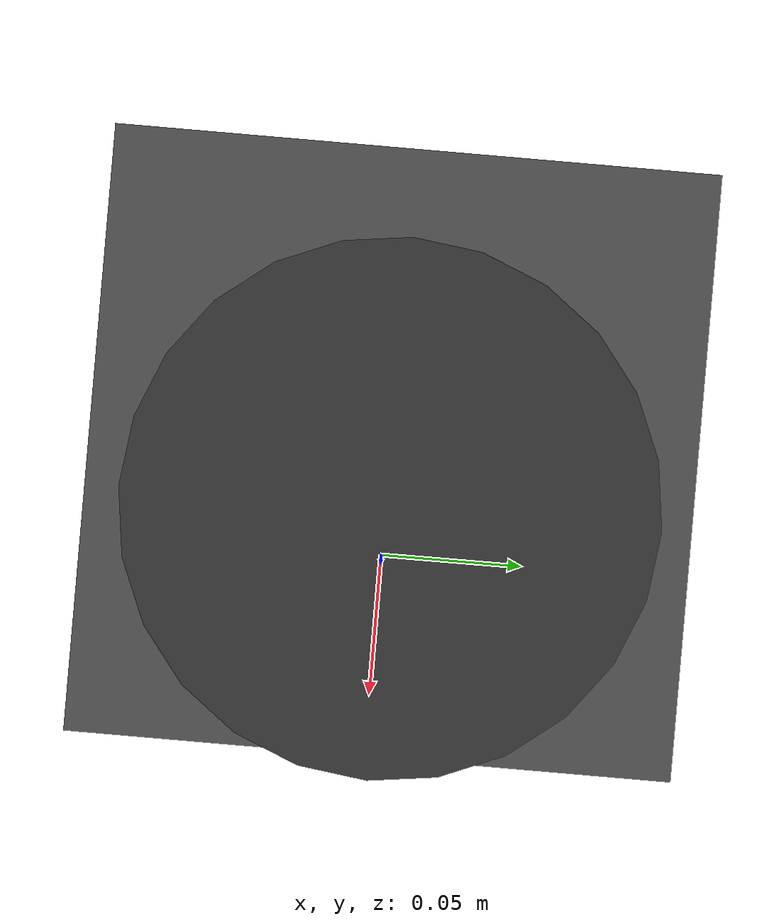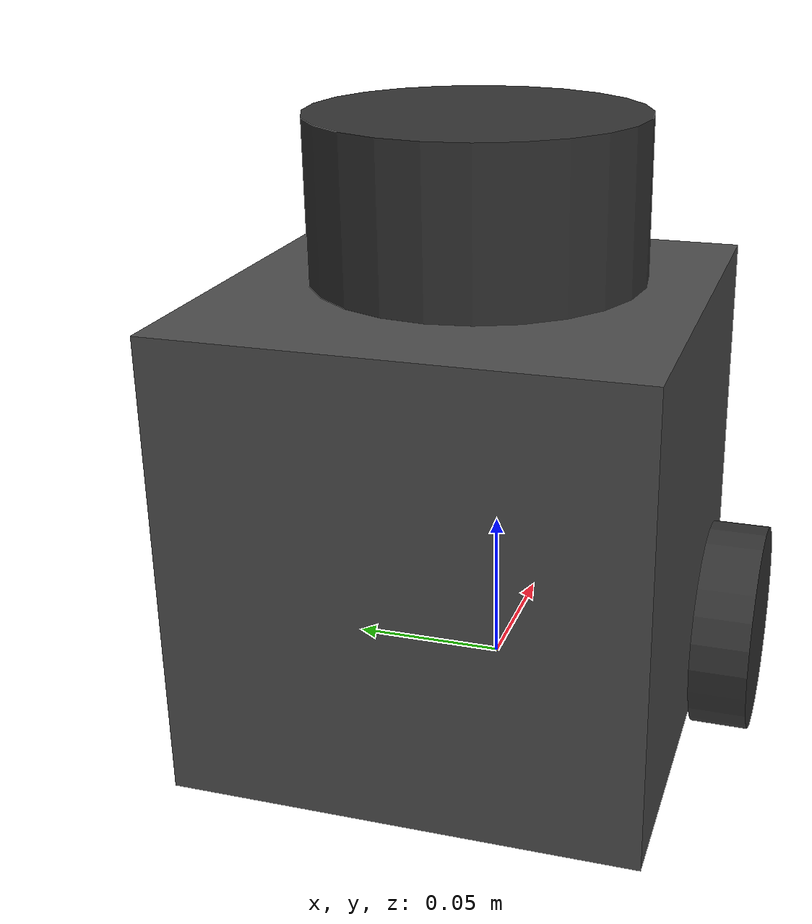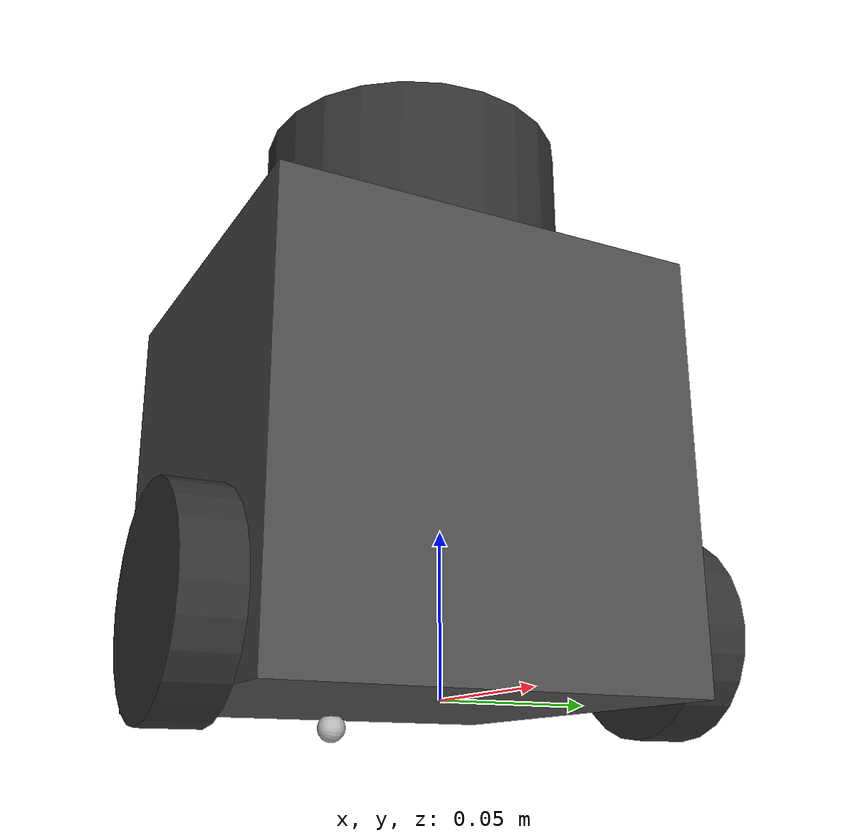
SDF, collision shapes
<?xml version="1.0" ?>
<sdf version="1.6">
  <model name="turtlebot3_burger_cam">
    <pose>0.0 0.0 0.0 0.0 0.0 0.0</pose>

    <link name="base_footprint"/>

    <link name="base_link">

      <inertial>
        <pose>-0.033 0 0.070 0 0 0</pose>
        <inertia>
           <ixx>2.2124416e-03</ixx>
           <ixy>0.0</ixy>
           <ixz>0.0</ixz>
           <iyy>2.1193702e-03</iyy>
           <iyz>0.0</iyz>
           <izz>2.0064271e-03</izz>
        </inertia>
        <mass>8.2573504e-01</mass>
      </inertial>

      <collision name="base_collision">
        <pose>-0.032 0 0.070 0 0 0</pose>
        <geometry>
          <box>
            <size>0.140 0.140 0.140</size>
          </box>
        </geometry>
      </collision>

      <visual name="base_visual">
        <pose>-0.032 0 0 0 0 0</pose>
        <geometry>
          <mesh>
            <uri>model://turtlebot3_common/meshes/bases/burger_base.stl</uri>
            <scale>0.001 0.001 0.001</scale>
          </mesh>
        </geometry>
        <material>
          <ambient>0.3 0.3 0.3 1.0</ambient>
          <diffuse>0.3 0.3 0.3 1.0</diffuse>
        </material>
      </visual>
    </link>

    <link name="imu_link">
      <sensor name="tb3_imu" type="imu">
        <always_on>true</always_on>
        <update_rate>200</update_rate>
        <topic>imu</topic>
        <imu>
          <angular_velocity>
            <x>
              <noise type="gaussian">
                <mean>0.0</mean>
                <stddev>2e-4</stddev>
              </noise>
            </x>
            <y>
              <noise type="gaussian">
                <mean>0.0</mean>
                <stddev>2e-4</stddev>
              </noise>
            </y>
            <z>
              <noise type="gaussian">
                <mean>0.0</mean>
                <stddev>2e-4</stddev>
              </noise>
            </z>
          </angular_velocity>
          <linear_acceleration>
            <x>
              <noise type="gaussian">
                <mean>0.0</mean>
                <stddev>1.7e-2</stddev>
              </noise>
            </x>
            <y>
              <noise type="gaussian">
                <mean>0.0</mean>
                <stddev>1.7e-2</stddev>
              </noise>
            </y>
            <z>
              <noise type="gaussian">
                <mean>0.0</mean>
                <stddev>1.7e-2</stddev>
              </noise>
            </z>
          </linear_acceleration>
        </imu>
      </sensor>
    </link>

    <link name="base_scan">
      <inertial>
        <pose>-0.020 0 0.161 0 0 0</pose>
        <inertia>
          <ixx>47.43e-06</ixx>
          <ixy>0.000</ixy>
          <ixz>0.000</ixz>
          <iyy>79.51e-06</iyy>
          <iyz>0.000</iyz>
          <izz>102.75e-06</izz>
        </inertia>
        <mass>0.114</mass>
      </inertial>

      <collision name="lidar_sensor_collision">
        <pose>-0.020 0 0.161 0 0 0</pose>
        <geometry>
          <cylinder>
            <radius>0.0508</radius>
            <length>0.055</length>
          </cylinder>
        </geometry>
      </collision>

      <visual name="lidar_sensor_visual">
        <pose>-0.032 0 0.171 0 0 0</pose>
        <geometry>
          <mesh>
            <uri>model://turtlebot3_common/meshes/sensors/lds.stl</uri>
            <scale>0.001 0.001 0.001</scale>
          </mesh>
        </geometry>
        <material>
          <ambient>0.2 0.2 0.2 1.0</ambient>
          <diffuse>0.2 0.2 0.2 1.0</diffuse>
        </material>
      </visual>

      <sensor name="hls_lfcd_lds" type="gpu_lidar">
        <always_on>true</always_on>
        <visualize>true</visualize>
        <pose>-0.032 0 0.171 0 0 0</pose>
        <update_rate>5</update_rate>
        <topic>scan</topic>
        <gz_frame_id>base_scan</gz_frame_id>
        <lidar>
          <scan>
            <horizontal>
              <samples>360</samples>
              <resolution>1.000000</resolution>
              <min_angle>0.000000</min_angle>
              <max_angle>6.280000</max_angle>
            </horizontal>
          </scan>
          <range>
            <min>0.120000</min>
            <max>3.5</max>
            <resolution>0.015000</resolution>
          </range>
          <noise>
            <type>gaussian</type>
            <mean>0.0</mean>
            <stddev>0.01</stddev>
          </noise>
        </lidar>
      </sensor>
    </link>

    <link name="wheel_left_link">

      <inertial>
        <pose>0 0.08 0.023 -1.57 0 0</pose>
        <inertia>
          <ixx>1.1175580e-05</ixx>
          <ixy>0.0</ixy>
          <ixz>0.0</ixz>
          <iyy>1.1192413e-05</iyy>
          <iyz>0.0</iyz>
          <izz>2.0712558e-05</izz>
        </inertia>
        <mass>2.8498940e-02</mass>
      </inertial>

      <collision name="wheel_left_collision">
        <pose>0 0.08 0.023 -1.57 0 0</pose>
        <geometry>
          <cylinder>
            <radius>0.033</radius>
            <length>0.018</length>
          </cylinder>
        </geometry>
        <surface>
          <!-- This friction pamareter don't contain reliable data!! -->
          <friction>
            <ode>
              <mu>100000.0</mu>
              <mu2>100000.0</mu2>
              <fdir1>0 0 0</fdir1>
              <slip1>0.0</slip1>
              <slip2>0.0</slip2>
            </ode>
          </friction>
          <contact>
            <ode>
              <soft_cfm>0</soft_cfm>
              <soft_erp>0.2</soft_erp>
              <kp>1e+5</kp>
              <kd>1</kd>
              <max_vel>0.01</max_vel>
              <min_depth>0.001</min_depth>
            </ode>
          </contact>
        </surface>
      </collision>

      <visual name="wheel_left_visual">
        <pose>0 0.08 0.023 0 0 0</pose>
        <geometry>
          <mesh>
            <uri>model://turtlebot3_common/meshes/wheels/left_tire.stl</uri>
            <scale>0.001 0.001 0.001</scale>
          </mesh>
        </geometry>
        <material>
          <ambient>0.2 0.2 0.2 1.0</ambient>
          <diffuse>0.2 0.2 0.2 1.0</diffuse>
        </material>
      </visual>
    </link>

    <link name="wheel_right_link">

      <inertial>
        <pose>0.0 -0.08 0.023 -1.57 0 0</pose>
        <inertia>
          <ixx>1.1175580e-05</ixx>
          <ixy>0.0</ixy>
          <ixz>0.0</ixz>
          <iyy>1.1192413e-05</iyy>
          <iyz>0.0</iyz>
          <izz>2.0712558e-05</izz>
        </inertia>
        <mass>2.8498940e-02</mass>
      </inertial>

      <collision name="wheel_right_collision">
        <pose>0.0 -0.08 0.023 -1.57 0 0</pose>
        <geometry>
          <cylinder>
            <radius>0.033</radius>
            <length>0.018</length>
          </cylinder>
        </geometry>
        <surface>
          <!-- This friction pamareter don't contain reliable data!! -->
          <friction>
            <ode>
              <mu>100000.0</mu>
              <mu2>100000.0</mu2>
              <fdir1>0 0 0</fdir1>
              <slip1>0.0</slip1>
              <slip2>0.0</slip2>
            </ode>
          </friction>
          <contact>
            <ode>
              <soft_cfm>0</soft_cfm>
              <soft_erp>0.2</soft_erp>
              <kp>1e+5</kp>
              <kd>1</kd>
              <max_vel>0.01</max_vel>
              <min_depth>0.001</min_depth>
            </ode>
          </contact>
        </surface>
      </collision>

      <visual name="wheel_right_visual">
        <pose>0.0 -0.08 0.023 0 0 0</pose>
        <geometry>
          <mesh>
            <uri>model://turtlebot3_common/meshes/wheels/right_tire.stl</uri>
            <scale>0.001 0.001 0.001</scale>
          </mesh>
        </geometry>
        <material>
          <ambient>0.2 0.2 0.2 1.0</ambient>
          <diffuse>0.2 0.2 0.2 1.0</diffuse>
        </material>
      </visual>
    </link>

    <link name='caster_back_link'>
      <pose>-0.081 0 -0.004 -1.57 0 0</pose>
      <inertial>
        <mass>0.005</mass>
        <inertia>
          <ixx>1.0e-07</ixx>
          <ixy>0.000</ixy>
          <ixz>0.000</ixz>
          <iyy>1.0e-07</iyy>
          <iyz>0.000</iyz>
          <izz>1.0e-07</izz>
        </inertia>
      </inertial>
      <collision name='collision'>
        <geometry>
          <sphere>
            <radius>0.005000</radius>
          </sphere>
        </geometry>
        <surface>
          <contact>
            <ode>
              <soft_cfm>0</soft_cfm>
              <soft_erp>0.2</soft_erp>
              <kp>1e+5</kp>
              <kd>1</kd>
              <max_vel>0.01</max_vel>
              <min_depth>0.001</min_depth>
            </ode>
          </contact>
        </surface>
      </collision>
    </link>

    <link name="camera_link">
      <inertial>
        <pose>0.076 0.0 0.093 0 0 0</pose>
        <mass>0.035</mass>
        <inertia>
          <ixx>0.001</ixx>
          <ixy>0.000</ixy>
          <ixz>0.000</ixz>
          <iyy>0.001</iyy>
          <iyz>0.000</iyz>
          <izz>0.001</izz>
        </inertia>
      </inertial>
      <collision name="camera_collision">
         <geometry>
           <box>
              <size>0.001 0.001 0.001</size>
           </box>
         </geometry>
      </collision>

      <sensor name='rgb_camera' type='camera'>
          <pose>0 0 0 0 0 0</pose>
          <update_rate>30</update_rate>
          <always_on>1</always_on>
          <visualize>true</visualize>
          <topic>camera/color/image_raw</topic>
          <gz_frame_id>camera_link</gz_frame_id>
          <camera>
            <horizontal_fov>1.047</horizontal_fov>
            <image>
              <width>640</width>
              <height>480</height>
              <format>RGB_INT8</format>
            </image>
            <clip>
              <near>0.1</near>
              <far>100</far>
            </clip>
          </camera>
      </sensor>
      <sensor name='depth_camera' type='depth_camera'>
          <pose>0 0 0 0 0 0</pose>
          <update_rate>30</update_rate>
          <always_on>1</always_on>
          <visualize>true</visualize>
          <topic>depth_camera/image</topic>
          <gz_frame_id>camera_link</gz_frame_id>
          <camera>
            <horizontal_fov>1.047</horizontal_fov>
            <image>
              <width>640</width>
              <height>480</height>
              <format>R_FLOAT32</format>
            </image>
            <clip>
              <near>0.1</near>
              <far>100.0</far>
            </clip>
          </camera>
      </sensor>
    </link>

    <joint name="base_joint" type="fixed">
      <parent>base_footprint</parent>
      <child>base_link</child>
      <pose>0.0 0.0 0.010 0 0 0</pose>
    </joint>

    <joint name="wheel_left_joint" type="revolute">
      <parent>base_link</parent>
      <child>wheel_left_link</child>
      <pose>0.0 0.08 0.023 -1.57 0 0</pose>
      <axis>
        <xyz>0 0 1</xyz>
      </axis>
    </joint>

    <joint name="wheel_right_joint" type="revolute">
      <parent>base_link</parent>
      <child>wheel_right_link</child>
      <pose>0.0 -0.08 0.023 -1.57 0 0</pose>
      <axis>
        <xyz>0 0 1</xyz>
      </axis>
    </joint>

    <joint name='caster_back_joint' type='ball'>
      <parent>base_link</parent>
      <child>caster_back_link</child>
    </joint>

    <joint name="imu_joint" type="fixed">
      <parent>base_link</parent>
      <child>imu_link</child>
      <pose>-0.032 0 0.068 0 0 0</pose>
      <axis>
        <xyz>0 0 1</xyz>
      </axis>
    </joint>

    <joint name="lidar_joint" type="fixed">
      <parent>base_link</parent>
      <child>base_scan</child>
      <pose>-0.032 0 0.171 0 0 0</pose>
      <axis>
        <xyz>0 0 1</xyz>
      </axis>
    </joint>

    <joint name="camera_joint" type="fixed">
      <parent>base_link</parent>
      <child>camera_link</child>
      <pose>0.05 0.0 0.12 0 0 0</pose>
      <axis>
        <xyz>0 0 1</xyz>
      </axis>
    </joint>

    <plugin filename="gz-sim-diff-drive-system" name="gz::sim::systems::DiffDrive">
      <!-- wheels -->
      <left_joint>wheel_left_joint</left_joint>
      <right_joint>wheel_right_joint</right_joint>

      <!-- kinematics -->
      <wheel_separation>0.160</wheel_separation>
      <wheel_radius>0.033</wheel_radius>

      <!-- limits -->
      <max_linear_acceleration>1.0</max_linear_acceleration>

      <topic>cmd_vel</topic>
      <odom_topic>odom</odom_topic>
      <frame_id>odom</frame_id>
      <tf_topic>/tf</tf_topic>
      <odom_publisher_frequency>30</odom_publisher_frequency>
      <child_frame_id>base_footprint</child_frame_id>
    </plugin>

    <plugin filename="gz-sim-joint-state-publisher-system"
      name="gz::sim::systems::JointStatePublisher">
      <topic>joint_states</topic>
      <joint_name>wheel_left_joint</joint_name>
      <joint_name>wheel_right_joint</joint_name>
    </plugin>

  </model>
</sdf>
